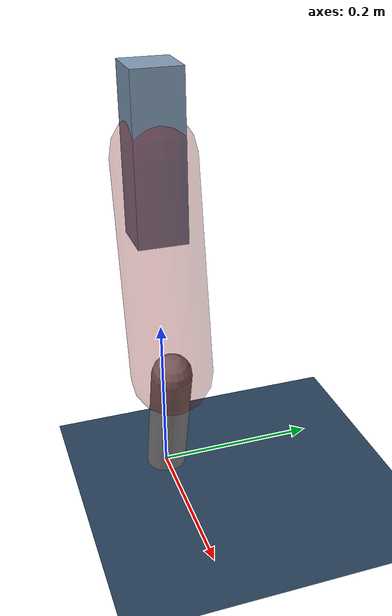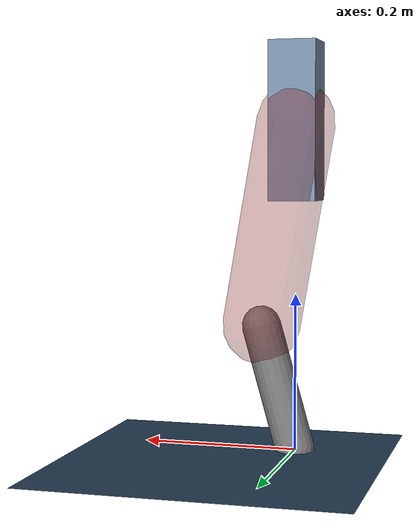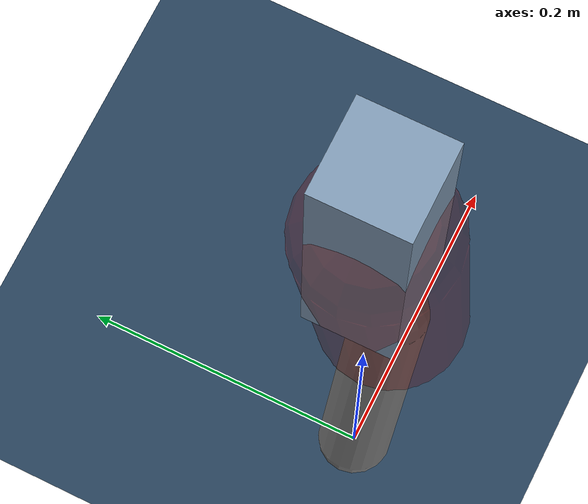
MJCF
<mujoco model="Hopper2D">
	<compiler inertiafromgeom="true" angle="radian" />
	<option timestep="0.001" integrator="implicit" cone="elliptic" solver="Newton" tolerance="1e-10" />

	<default>
		<geom contype="1" conaffinity="1" condim="3" friction="2 0.005 0.0001" solref="0.005 1" />
		<joint limited="true" damping="0.1" />
	</default>

	<asset>
		<texture name="skybox" type="skybox" builtin="gradient" rgb1=".4 .6 .8" rgb2="0 0 0" width="800" height="800" />
		<texture name="grid" type="2d" builtin="checker" rgb1=".1 .2 .3" rgb2=".2 .3 .4" width="300" height="300" mark="edge" markrgb=".2 .3 .4" />
		<material name="ground" texture="grid" texrepeat="1 1" texuniform="true" reflectance="0.1" />
		<material name="leg" rgba="0.5 0.6 0.7 1" />
	</asset>

	<worldbody>

		<geom name="floor" type="plane" size="5 5 0.25" material="ground" />

		<light directional="false" diffuse="0.8 0.8 0.8" specular="0.3 0.3 0.3" pos="0 0 2" dir="0 0 -1" />
		<light mode="targetbodycom" target="base" directional="false" diffuse="0.8 0.8 0.8" specular="0.3 0.3 0.3" pos="0 0 2" dir="0 0 -1" />

		<camera name="fixed" pos="0 -2 1" xyaxes="1 0 0 0 0 1" />
		<camera name="tracking" mode="trackcom" pos="0 -3 1" />

		<body name="root" pos="0 0 0.41914774229881097">
			<joint name="slide_x" type="slide" axis="1 0 0" range="-100 100" />
			<joint name="slide_z" type="slide" axis="0 0 1" range="0 10" />

			<body name="base" pos="0 0 0">
				<geom name="torso" type="box" size="0.03 0.03 0.1" mass="2.4589999999999996" material="leg" />

				<body name="link1" pos="0 0 0" euler="0 1.4004057517016515 0">
					<joint type="hinge" axis="0 -1 0" pos="0 0 0" name="hinge1" limited="true" range="-3.14 3.14" stiffness="0" damping="0.1" />
					<geom name="thigh" type="capsule" fromto="0 0 0 0.2639402310789007 0 0" size="0.05" rgba="0.5 0 0 0.3" mass="0.8927446008051417" />

					<body name="link2" pos="0.2639402310789007 0 0" euler="0 0.4447241824411532 0">
						<joint type="hinge" axis="0 -1 0" pos="0 0 0" name="hinge2" limited="true" range="-3.14 3.14" stiffness="0" damping="0.1" />
						<geom name="shank" type="capsule" fromto="0 0 0 0.16520751121991029 0 0" size="0.025" mass="0.37108676009791924" />

					</body>
				</body>
			</body>
		</body>
	</worldbody>

	<actuator>
		<motor name="torque1" joint="hinge1" ctrlrange="-63.3292733100936 63.3292733100936" ctrllimited="true" gear="1" />
		<motor name="torque2" joint="hinge2" ctrlrange="-48.63580186474521 48.63580186474521" ctrllimited="true" gear="1" />
	</actuator>
</mujoco>
